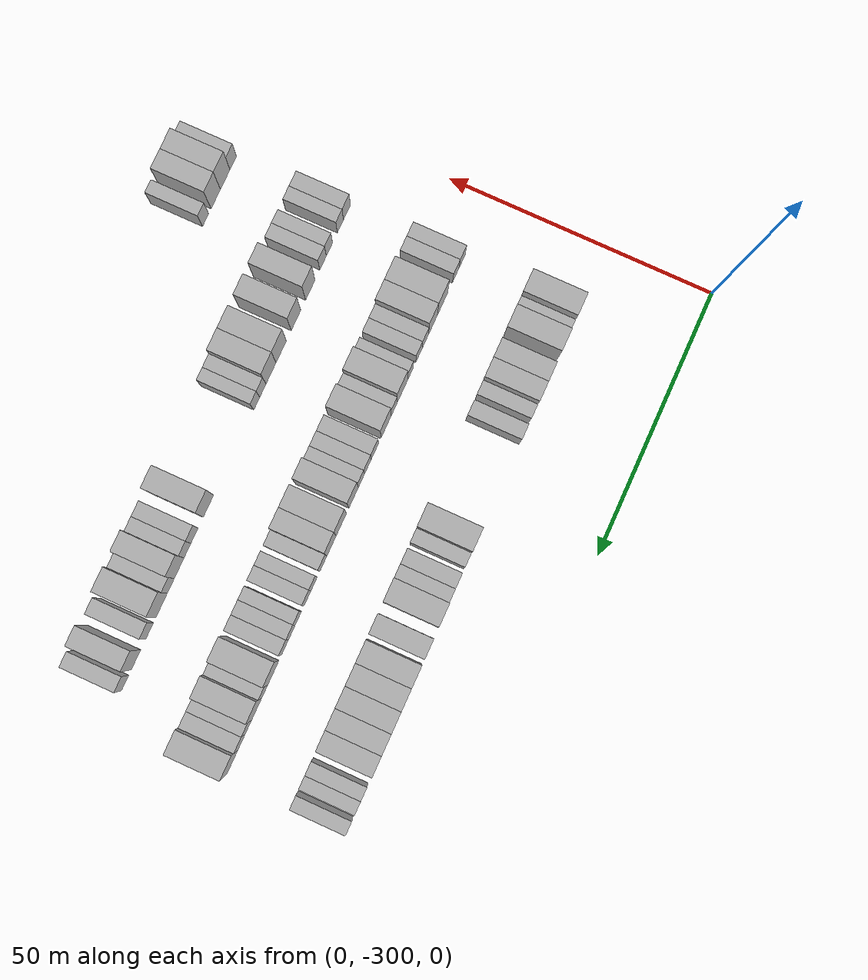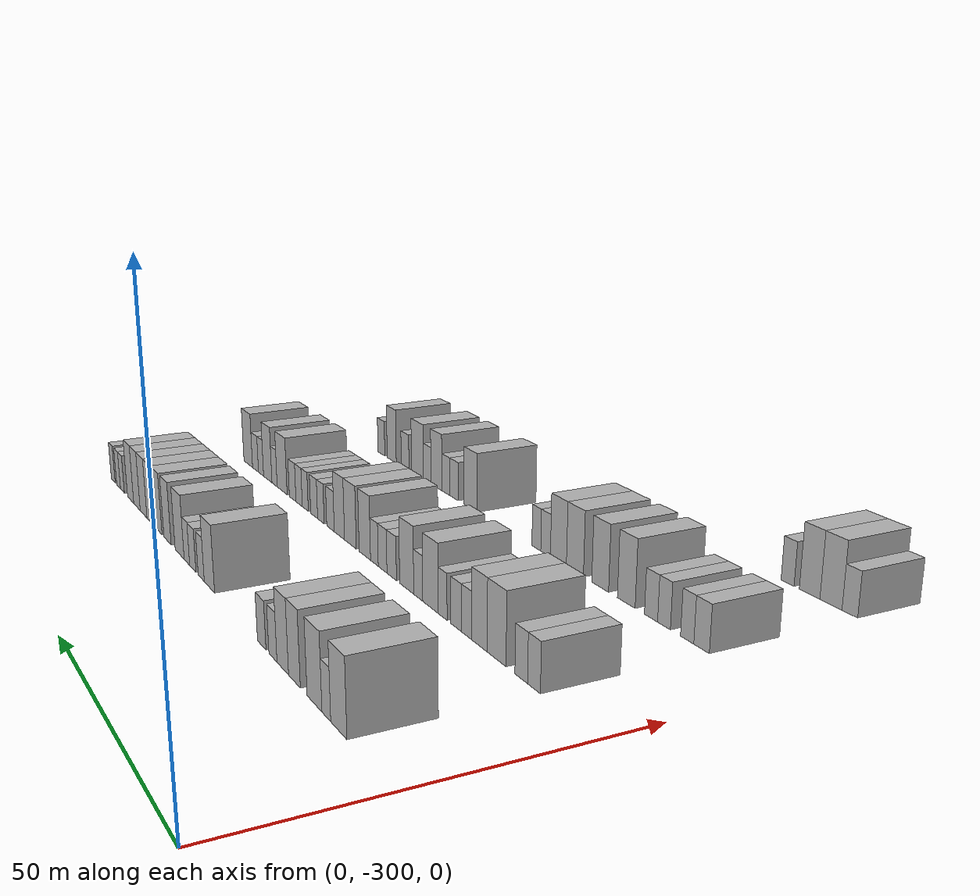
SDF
<sdf version="1.6">
 <world name="default">
  <model name="building_24">
   <static>1</static>
   <pose>25.0000 -286.5370 0 0.000000 0.000000 0.000000</pose>
   <link name="link">
    <pose>0 0 4.50 0 0 0</pose>
    <collision name="collision"><geometry><box><size>10.0000 4.2558 9.0000</size></box></geometry></collision>
    <visual name="visual">
     <cast_shadows>0</cast_shadows>
     <geometry><box><size>10.0000 4.2558 9.0000</size></box></geometry>
     <material>
      <script>
       <uri>model://HANNAS_wall/materials/scripts</uri>
       <uri>model://HANNAS_wall/materials/textures</uri>
       <name>vrc/HANNAS_wall</name>
      </script>
     </material>
    </visual>
   </link>
  </model>
  <model name="building_25">
   <static>1</static>
   <pose>25.0000 -283.2069 0 0.000000 0.000000 0.000000</pose>
   <link name="link">
    <pose>0 0 3.00 0 0 0</pose>
    <collision name="collision"><geometry><box><size>10.0000 2.4044 6.0000</size></box></geometry></collision>
    <visual name="visual">
     <cast_shadows>0</cast_shadows>
     <geometry><box><size>10.0000 2.4044 6.0000</size></box></geometry>
     <material>
      <script>
       <uri>model://HANNAS_wall/materials/scripts</uri>
       <uri>model://HANNAS_wall/materials/textures</uri>
       <name>vrc/HANNAS_wall</name>
      </script>
     </material>
    </visual>
   </link>
  </model>
  <model name="building_26">
   <static>1</static>
   <pose>25.0000 -279.8843 0 0.000000 0.000000 0.000000</pose>
   <link name="link">
    <pose>0 0 4.50 0 0 0</pose>
    <collision name="collision"><geometry><box><size>10.0000 4.2408 9.0000</size></box></geometry></collision>
    <visual name="visual">
     <cast_shadows>0</cast_shadows>
     <geometry><box><size>10.0000 4.2408 9.0000</size></box></geometry>
     <material>
      <script>
       <uri>model://HANNAS_wall/materials/scripts</uri>
       <uri>model://HANNAS_wall/materials/textures</uri>
       <name>vrc/HANNAS_wall</name>
      </script>
     </material>
    </visual>
   </link>
  </model>
  <model name="building_27">
   <static>1</static>
   <pose>25.0000 -273.9616 0 0.000000 0.000000 0.000000</pose>
   <link name="link">
    <pose>0 0 4.50 0 0 0</pose>
    <collision name="collision"><geometry><box><size>10.0000 3.6046 9.0000</size></box></geometry></collision>
    <visual name="visual">
     <cast_shadows>0</cast_shadows>
     <geometry><box><size>10.0000 3.6046 9.0000</size></box></geometry>
     <material>
      <script>
       <uri>model://HANNAS_wall/materials/scripts</uri>
       <uri>model://HANNAS_wall/materials/textures</uri>
       <name>vrc/HANNAS_wall</name>
      </script>
     </material>
    </visual>
   </link>
  </model>
  <model name="building_28">
   <static>1</static>
   <pose>25.0000 -270.3155 0 0.000000 0.000000 0.000000</pose>
   <link name="link">
    <pose>0 0 4.50 0 0 0</pose>
    <collision name="collision"><geometry><box><size>10.0000 3.6878 9.0000</size></box></geometry></collision>
    <visual name="visual">
     <cast_shadows>0</cast_shadows>
     <geometry><box><size>10.0000 3.6878 9.0000</size></box></geometry>
     <material>
      <script>
       <uri>model://HANNAS_wall/materials/scripts</uri>
       <uri>model://HANNAS_wall/materials/textures</uri>
       <name>vrc/HANNAS_wall</name>
      </script>
     </material>
    </visual>
   </link>
  </model>
  <model name="building_29">
   <static>1</static>
   <pose>25.0000 -267.1357 0 0.000000 0.000000 0.000000</pose>
   <link name="link">
    <pose>0 0 3.00 0 0 0</pose>
    <collision name="collision"><geometry><box><size>10.0000 2.6718 6.0000</size></box></geometry></collision>
    <visual name="visual">
     <cast_shadows>0</cast_shadows>
     <geometry><box><size>10.0000 2.6718 6.0000</size></box></geometry>
     <material>
      <script>
       <uri>model://HANNAS_wall/materials/scripts</uri>
       <uri>model://HANNAS_wall/materials/textures</uri>
       <name>vrc/HANNAS_wall</name>
      </script>
     </material>
    </visual>
   </link>
  </model>
  <model name="building_30">
   <static>1</static>
   <pose>25.0000 -263.3466 0 0.000000 0.000000 0.000000</pose>
   <link name="link">
    <pose>0 0 3.00 0 0 0</pose>
    <collision name="collision"><geometry><box><size>10.0000 2.9063 6.0000</size></box></geometry></collision>
    <visual name="visual">
     <cast_shadows>0</cast_shadows>
     <geometry><box><size>10.0000 2.9063 6.0000</size></box></geometry>
     <material>
      <script>
       <uri>model://HANNAS_wall/materials/scripts</uri>
       <uri>model://HANNAS_wall/materials/textures</uri>
       <name>vrc/HANNAS_wall</name>
      </script>
     </material>
    </visual>
   </link>
  </model>
  <model name="building_31">
   <static>1</static>
   <pose>25.0000 -243.3205 0 0.000000 0.000000 0.000000</pose>
   <link name="link">
    <pose>0 0 4.50 0 0 0</pose>
    <collision name="collision"><geometry><box><size>10.0000 4.3820 9.0000</size></box></geometry></collision>
    <visual name="visual">
     <cast_shadows>0</cast_shadows>
     <geometry><box><size>10.0000 4.3820 9.0000</size></box></geometry>
     <material>
      <script>
       <uri>model://HANNAS_wall/materials/scripts</uri>
       <uri>model://HANNAS_wall/materials/textures</uri>
       <name>vrc/HANNAS_wall</name>
      </script>
     </material>
    </visual>
   </link>
  </model>
  <model name="building_32">
   <static>1</static>
   <pose>25.0000 -239.7959 0 0.000000 0.000000 0.000000</pose>
   <link name="link">
    <pose>0 0 3.00 0 0 0</pose>
    <collision name="collision"><geometry><box><size>10.0000 2.6673 6.0000</size></box></geometry></collision>
    <visual name="visual">
     <cast_shadows>0</cast_shadows>
     <geometry><box><size>10.0000 2.6673 6.0000</size></box></geometry>
     <material>
      <script>
       <uri>model://HANNAS_wall/materials/scripts</uri>
       <uri>model://HANNAS_wall/materials/textures</uri>
       <name>vrc/HANNAS_wall</name>
      </script>
     </material>
    </visual>
   </link>
  </model>
  <model name="building_33">
   <static>1</static>
   <pose>25.0000 -236.0294 0 0.000000 0.000000 0.000000</pose>
   <link name="link">
    <pose>0 0 3.00 0 0 0</pose>
    <collision name="collision"><geometry><box><size>10.0000 2.8657 6.0000</size></box></geometry></collision>
    <visual name="visual">
     <cast_shadows>0</cast_shadows>
     <geometry><box><size>10.0000 2.8657 6.0000</size></box></geometry>
     <material>
      <script>
       <uri>model://HANNAS_wall/materials/scripts</uri>
       <uri>model://HANNAS_wall/materials/textures</uri>
       <name>vrc/HANNAS_wall</name>
      </script>
     </material>
    </visual>
   </link>
  </model>
  <model name="building_34">
   <static>1</static>
   <pose>25.0000 -233.3056 0 0.000000 0.000000 0.000000</pose>
   <link name="link">
    <pose>0 0 3.00 0 0 0</pose>
    <collision name="collision"><geometry><box><size>10.0000 2.5817 6.0000</size></box></geometry></collision>
    <visual name="visual">
     <cast_shadows>0</cast_shadows>
     <geometry><box><size>10.0000 2.5817 6.0000</size></box></geometry>
     <material>
      <script>
       <uri>model://HANNAS_wall/materials/scripts</uri>
       <uri>model://HANNAS_wall/materials/textures</uri>
       <name>vrc/HANNAS_wall</name>
      </script>
     </material>
    </visual>
   </link>
  </model>
  <model name="building_35">
   <static>1</static>
   <pose>25.0000 -229.8420 0 0.000000 0.000000 0.000000</pose>
   <link name="link">
    <pose>0 0 4.50 0 0 0</pose>
    <collision name="collision"><geometry><box><size>10.0000 4.3456 9.0000</size></box></geometry></collision>
    <visual name="visual">
     <cast_shadows>0</cast_shadows>
     <geometry><box><size>10.0000 4.3456 9.0000</size></box></geometry>
     <material>
      <script>
       <uri>model://HANNAS_wall/materials/scripts</uri>
       <uri>model://HANNAS_wall/materials/textures</uri>
       <name>vrc/HANNAS_wall</name>
      </script>
     </material>
    </visual>
   </link>
  </model>
  <model name="building_36">
   <static>1</static>
   <pose>25.0000 -223.8364 0 0.000000 0.000000 0.000000</pose>
   <link name="link">
    <pose>0 0 4.50 0 0 0</pose>
    <collision name="collision"><geometry><box><size>10.0000 3.6656 9.0000</size></box></geometry></collision>
    <visual name="visual">
     <cast_shadows>0</cast_shadows>
     <geometry><box><size>10.0000 3.6656 9.0000</size></box></geometry>
     <material>
      <script>
       <uri>model://HANNAS_wall/materials/scripts</uri>
       <uri>model://HANNAS_wall/materials/textures</uri>
       <name>vrc/HANNAS_wall</name>
      </script>
     </material>
    </visual>
   </link>
  </model>
  <model name="building_37">
   <static>1</static>
   <pose>25.0000 -218.9363 0 0.000000 0.000000 0.000000</pose>
   <link name="link">
    <pose>0 0 4.50 0 0 0</pose>
    <collision name="collision"><geometry><box><size>10.0000 4.1347 9.0000</size></box></geometry></collision>
    <visual name="visual">
     <cast_shadows>0</cast_shadows>
     <geometry><box><size>10.0000 4.1347 9.0000</size></box></geometry>
     <material>
      <script>
       <uri>model://HANNAS_wall/materials/scripts</uri>
       <uri>model://HANNAS_wall/materials/textures</uri>
       <name>vrc/HANNAS_wall</name>
      </script>
     </material>
    </visual>
   </link>
  </model>
  <model name="building_38">
   <static>1</static>
   <pose>25.0000 -214.8536 0 0.000000 0.000000 0.000000</pose>
   <link name="link">
    <pose>0 0 4.50 0 0 0</pose>
    <collision name="collision"><geometry><box><size>10.0000 4.0306 9.0000</size></box></geometry></collision>
    <visual name="visual">
     <cast_shadows>0</cast_shadows>
     <geometry><box><size>10.0000 4.0306 9.0000</size></box></geometry>
     <material>
      <script>
       <uri>model://HANNAS_wall/materials/scripts</uri>
       <uri>model://HANNAS_wall/materials/textures</uri>
       <name>vrc/HANNAS_wall</name>
      </script>
     </material>
    </visual>
   </link>
  </model>
  <model name="building_39">
   <static>1</static>
   <pose>25.0000 -210.9039 0 0.000000 0.000000 0.000000</pose>
   <link name="link">
    <pose>0 0 4.50 0 0 0</pose>
    <collision name="collision"><geometry><box><size>10.0000 3.8688 9.0000</size></box></geometry></collision>
    <visual name="visual">
     <cast_shadows>0</cast_shadows>
     <geometry><box><size>10.0000 3.8688 9.0000</size></box></geometry>
     <material>
      <script>
       <uri>model://HANNAS_wall/materials/scripts</uri>
       <uri>model://HANNAS_wall/materials/textures</uri>
       <name>vrc/HANNAS_wall</name>
      </script>
     </material>
    </visual>
   </link>
  </model>
  <model name="building_40">
   <static>1</static>
   <pose>25.0000 -207.0612 0 0.000000 0.000000 0.000000</pose>
   <link name="link">
    <pose>0 0 4.50 0 0 0</pose>
    <collision name="collision"><geometry><box><size>10.0000 3.8166 9.0000</size></box></geometry></collision>
    <visual name="visual">
     <cast_shadows>0</cast_shadows>
     <geometry><box><size>10.0000 3.8166 9.0000</size></box></geometry>
     <material>
      <script>
       <uri>model://HANNAS_wall/materials/scripts</uri>
       <uri>model://HANNAS_wall/materials/textures</uri>
       <name>vrc/HANNAS_wall</name>
      </script>
     </material>
    </visual>
   </link>
  </model>
  <model name="building_41">
   <static>1</static>
   <pose>25.0000 -203.2755 0 0.000000 0.000000 0.000000</pose>
   <link name="link">
    <pose>0 0 4.50 0 0 0</pose>
    <collision name="collision"><geometry><box><size>10.0000 3.7547 9.0000</size></box></geometry></collision>
    <visual name="visual">
     <cast_shadows>0</cast_shadows>
     <geometry><box><size>10.0000 3.7547 9.0000</size></box></geometry>
     <material>
      <script>
       <uri>model://HANNAS_wall/materials/scripts</uri>
       <uri>model://HANNAS_wall/materials/textures</uri>
       <name>vrc/HANNAS_wall</name>
      </script>
     </material>
    </visual>
   </link>
  </model>
  <model name="building_42">
   <static>1</static>
   <pose>25.0000 -198.1532 0 0.000000 0.000000 0.000000</pose>
   <link name="link">
    <pose>0 0 3.00 0 0 0</pose>
    <collision name="collision"><geometry><box><size>10.0000 2.4900 6.0000</size></box></geometry></collision>
    <visual name="visual">
     <cast_shadows>0</cast_shadows>
     <geometry><box><size>10.0000 2.4900 6.0000</size></box></geometry>
     <material>
      <script>
       <uri>model://HANNAS_wall/materials/scripts</uri>
       <uri>model://HANNAS_wall/materials/textures</uri>
       <name>vrc/HANNAS_wall</name>
      </script>
     </material>
    </visual>
   </link>
  </model>
  <model name="building_43">
   <static>1</static>
   <pose>25.0000 -195.6854 0 0.000000 0.000000 0.000000</pose>
   <link name="link">
    <pose>0 0 3.00 0 0 0</pose>
    <collision name="collision"><geometry><box><size>10.0000 2.4456 6.0000</size></box></geometry></collision>
    <visual name="visual">
     <cast_shadows>0</cast_shadows>
     <geometry><box><size>10.0000 2.4456 6.0000</size></box></geometry>
     <material>
      <script>
       <uri>model://HANNAS_wall/materials/scripts</uri>
       <uri>model://HANNAS_wall/materials/textures</uri>
       <name>vrc/HANNAS_wall</name>
      </script>
     </material>
    </visual>
   </link>
  </model>
  <model name="building_44">
   <static>1</static>
   <pose>25.0000 -192.1995 0 0.000000 0.000000 0.000000</pose>
   <link name="link">
    <pose>0 0 3.00 0 0 0</pose>
    <collision name="collision"><geometry><box><size>10.0000 2.5263 6.0000</size></box></geometry></collision>
    <visual name="visual">
     <cast_shadows>0</cast_shadows>
     <geometry><box><size>10.0000 2.5263 6.0000</size></box></geometry>
     <material>
      <script>
       <uri>model://HANNAS_wall/materials/scripts</uri>
       <uri>model://HANNAS_wall/materials/textures</uri>
       <name>vrc/HANNAS_wall</name>
      </script>
     </material>
    </visual>
   </link>
  </model>
  <model name="building_210">
   <static>1</static>
   <pose>47.0000 -287.2032 0 0.000000 0.000000 0.000000</pose>
   <link name="link">
    <pose>0 0 3.00 0 0 0</pose>
    <collision name="collision"><geometry><box><size>10.0000 2.7211 6.0000</size></box></geometry></collision>
    <visual name="visual">
     <cast_shadows>0</cast_shadows>
     <geometry><box><size>10.0000 2.7211 6.0000</size></box></geometry>
     <material>
      <script>
       <uri>model://HANNAS_wall/materials/scripts</uri>
       <uri>model://HANNAS_wall/materials/textures</uri>
       <name>vrc/HANNAS_wall</name>
      </script>
     </material>
    </visual>
   </link>
  </model>
  <model name="building_211">
   <static>1</static>
   <pose>47.0000 -284.4563 0 0.000000 0.000000 0.000000</pose>
   <link name="link">
    <pose>0 0 3.00 0 0 0</pose>
    <collision name="collision"><geometry><box><size>10.0000 2.7726 6.0000</size></box></geometry></collision>
    <visual name="visual">
     <cast_shadows>0</cast_shadows>
     <geometry><box><size>10.0000 2.7726 6.0000</size></box></geometry>
     <material>
      <script>
       <uri>model://HANNAS_wall/materials/scripts</uri>
       <uri>model://HANNAS_wall/materials/textures</uri>
       <name>vrc/HANNAS_wall</name>
      </script>
     </material>
    </visual>
   </link>
  </model>
  <model name="building_212">
   <static>1</static>
   <pose>47.0000 -278.8762 0 0.000000 0.000000 0.000000</pose>
   <link name="link">
    <pose>0 0 4.50 0 0 0</pose>
    <collision name="collision"><geometry><box><size>10.0000 4.3877 9.0000</size></box></geometry></collision>
    <visual name="visual">
     <cast_shadows>0</cast_shadows>
     <geometry><box><size>10.0000 4.3877 9.0000</size></box></geometry>
     <material>
      <script>
       <uri>model://HANNAS_wall/materials/scripts</uri>
       <uri>model://HANNAS_wall/materials/textures</uri>
       <name>vrc/HANNAS_wall</name>
      </script>
     </material>
    </visual>
   </link>
  </model>
  <model name="building_213">
   <static>1</static>
   <pose>47.0000 -274.7833 0 0.000000 0.000000 0.000000</pose>
   <link name="link">
    <pose>0 0 4.50 0 0 0</pose>
    <collision name="collision"><geometry><box><size>10.0000 3.7979 9.0000</size></box></geometry></collision>
    <visual name="visual">
     <cast_shadows>0</cast_shadows>
     <geometry><box><size>10.0000 3.7979 9.0000</size></box></geometry>
     <material>
      <script>
       <uri>model://HANNAS_wall/materials/scripts</uri>
       <uri>model://HANNAS_wall/materials/textures</uri>
       <name>vrc/HANNAS_wall</name>
      </script>
     </material>
    </visual>
   </link>
  </model>
  <model name="building_214">
   <static>1</static>
   <pose>47.0000 -271.5562 0 0.000000 0.000000 0.000000</pose>
   <link name="link">
    <pose>0 0 3.00 0 0 0</pose>
    <collision name="collision"><geometry><box><size>10.0000 2.6563 6.0000</size></box></geometry></collision>
    <visual name="visual">
     <cast_shadows>0</cast_shadows>
     <geometry><box><size>10.0000 2.6563 6.0000</size></box></geometry>
     <material>
      <script>
       <uri>model://HANNAS_wall/materials/scripts</uri>
       <uri>model://HANNAS_wall/materials/textures</uri>
       <name>vrc/HANNAS_wall</name>
      </script>
     </material>
    </visual>
   </link>
  </model>
  <model name="building_215">
   <static>1</static>
   <pose>47.0000 -268.8867 0 0.000000 0.000000 0.000000</pose>
   <link name="link">
    <pose>0 0 3.00 0 0 0</pose>
    <collision name="collision"><geometry><box><size>10.0000 2.6827 6.0000</size></box></geometry></collision>
    <visual name="visual">
     <cast_shadows>0</cast_shadows>
     <geometry><box><size>10.0000 2.6827 6.0000</size></box></geometry>
     <material>
      <script>
       <uri>model://HANNAS_wall/materials/scripts</uri>
       <uri>model://HANNAS_wall/materials/textures</uri>
       <name>vrc/HANNAS_wall</name>
      </script>
     </material>
    </visual>
   </link>
  </model>
  <model name="building_216">
   <static>1</static>
   <pose>47.0000 -265.3339 0 0.000000 0.000000 0.000000</pose>
   <link name="link">
    <pose>0 0 3.00 0 0 0</pose>
    <collision name="collision"><geometry><box><size>10.0000 2.4229 6.0000</size></box></geometry></collision>
    <visual name="visual">
     <cast_shadows>0</cast_shadows>
     <geometry><box><size>10.0000 2.4229 6.0000</size></box></geometry>
     <material>
      <script>
       <uri>model://HANNAS_wall/materials/scripts</uri>
       <uri>model://HANNAS_wall/materials/textures</uri>
       <name>vrc/HANNAS_wall</name>
      </script>
     </material>
    </visual>
   </link>
  </model>
  <model name="building_217">
   <static>1</static>
   <pose>47.0000 -261.9814 0 0.000000 0.000000 0.000000</pose>
   <link name="link">
    <pose>0 0 4.50 0 0 0</pose>
    <collision name="collision"><geometry><box><size>10.0000 4.2821 9.0000</size></box></geometry></collision>
    <visual name="visual">
     <cast_shadows>0</cast_shadows>
     <geometry><box><size>10.0000 4.2821 9.0000</size></box></geometry>
     <material>
      <script>
       <uri>model://HANNAS_wall/materials/scripts</uri>
       <uri>model://HANNAS_wall/materials/textures</uri>
       <name>vrc/HANNAS_wall</name>
      </script>
     </material>
    </visual>
   </link>
  </model>
  <model name="building_218">
   <static>1</static>
   <pose>47.0000 -258.5374 0 0.000000 0.000000 0.000000</pose>
   <link name="link">
    <pose>0 0 3.00 0 0 0</pose>
    <collision name="collision"><geometry><box><size>10.0000 2.6060 6.0000</size></box></geometry></collision>
    <visual name="visual">
     <cast_shadows>0</cast_shadows>
     <geometry><box><size>10.0000 2.6060 6.0000</size></box></geometry>
     <material>
      <script>
       <uri>model://HANNAS_wall/materials/scripts</uri>
       <uri>model://HANNAS_wall/materials/textures</uri>
       <name>vrc/HANNAS_wall</name>
      </script>
     </material>
    </visual>
   </link>
  </model>
  <model name="building_219">
   <static>1</static>
   <pose>47.0000 -255.1278 0 0.000000 0.000000 0.000000</pose>
   <link name="link">
    <pose>0 0 4.50 0 0 0</pose>
    <collision name="collision"><geometry><box><size>10.0000 4.2130 9.0000</size></box></geometry></collision>
    <visual name="visual">
     <cast_shadows>0</cast_shadows>
     <geometry><box><size>10.0000 4.2130 9.0000</size></box></geometry>
     <material>
      <script>
       <uri>model://HANNAS_wall/materials/scripts</uri>
       <uri>model://HANNAS_wall/materials/textures</uri>
       <name>vrc/HANNAS_wall</name>
      </script>
     </material>
    </visual>
   </link>
  </model>
  <model name="building_220">
   <static>1</static>
   <pose>47.0000 -250.5356 0 0.000000 0.000000 0.000000</pose>
   <link name="link">
    <pose>0 0 3.00 0 0 0</pose>
    <collision name="collision"><geometry><box><size>10.0000 2.9715 6.0000</size></box></geometry></collision>
    <visual name="visual">
     <cast_shadows>0</cast_shadows>
     <geometry><box><size>10.0000 2.9715 6.0000</size></box></geometry>
     <material>
      <script>
       <uri>model://HANNAS_wall/materials/scripts</uri>
       <uri>model://HANNAS_wall/materials/textures</uri>
       <name>vrc/HANNAS_wall</name>
      </script>
     </material>
    </visual>
   </link>
  </model>
  <model name="building_221">
   <static>1</static>
   <pose>47.0000 -247.6510 0 0.000000 0.000000 0.000000</pose>
   <link name="link">
    <pose>0 0 3.00 0 0 0</pose>
    <collision name="collision"><geometry><box><size>10.0000 2.7976 6.0000</size></box></geometry></collision>
    <visual name="visual">
     <cast_shadows>0</cast_shadows>
     <geometry><box><size>10.0000 2.7976 6.0000</size></box></geometry>
     <material>
      <script>
       <uri>model://HANNAS_wall/materials/scripts</uri>
       <uri>model://HANNAS_wall/materials/textures</uri>
       <name>vrc/HANNAS_wall</name>
      </script>
     </material>
    </visual>
   </link>
  </model>
  <model name="building_222">
   <static>1</static>
   <pose>47.0000 -244.9726 0 0.000000 0.000000 0.000000</pose>
   <link name="link">
    <pose>0 0 3.00 0 0 0</pose>
    <collision name="collision"><geometry><box><size>10.0000 2.5590 6.0000</size></box></geometry></collision>
    <visual name="visual">
     <cast_shadows>0</cast_shadows>
     <geometry><box><size>10.0000 2.5590 6.0000</size></box></geometry>
     <material>
      <script>
       <uri>model://HANNAS_wall/materials/scripts</uri>
       <uri>model://HANNAS_wall/materials/textures</uri>
       <name>vrc/HANNAS_wall</name>
      </script>
     </material>
    </visual>
   </link>
  </model>
  <model name="building_223">
   <static>1</static>
   <pose>47.0000 -241.7598 0 0.000000 0.000000 0.000000</pose>
   <link name="link">
    <pose>0 0 4.50 0 0 0</pose>
    <collision name="collision"><geometry><box><size>10.0000 3.8667 9.0000</size></box></geometry></collision>
    <visual name="visual">
     <cast_shadows>0</cast_shadows>
     <geometry><box><size>10.0000 3.8667 9.0000</size></box></geometry>
     <material>
      <script>
       <uri>model://HANNAS_wall/materials/scripts</uri>
       <uri>model://HANNAS_wall/materials/textures</uri>
       <name>vrc/HANNAS_wall</name>
      </script>
     </material>
    </visual>
   </link>
  </model>
  <model name="building_224">
   <static>1</static>
   <pose>47.0000 -236.7335 0 0.000000 0.000000 0.000000</pose>
   <link name="link">
    <pose>0 0 4.50 0 0 0</pose>
    <collision name="collision"><geometry><box><size>10.0000 4.1858 9.0000</size></box></geometry></collision>
    <visual name="visual">
     <cast_shadows>0</cast_shadows>
     <geometry><box><size>10.0000 4.1858 9.0000</size></box></geometry>
     <material>
      <script>
       <uri>model://HANNAS_wall/materials/scripts</uri>
       <uri>model://HANNAS_wall/materials/textures</uri>
       <name>vrc/HANNAS_wall</name>
      </script>
     </material>
    </visual>
   </link>
  </model>
  <model name="building_225">
   <static>1</static>
   <pose>47.0000 -232.7395 0 0.000000 0.000000 0.000000</pose>
   <link name="link">
    <pose>0 0 4.50 0 0 0</pose>
    <collision name="collision"><geometry><box><size>10.0000 3.8023 9.0000</size></box></geometry></collision>
    <visual name="visual">
     <cast_shadows>0</cast_shadows>
     <geometry><box><size>10.0000 3.8023 9.0000</size></box></geometry>
     <material>
      <script>
       <uri>model://HANNAS_wall/materials/scripts</uri>
       <uri>model://HANNAS_wall/materials/textures</uri>
       <name>vrc/HANNAS_wall</name>
      </script>
     </material>
    </visual>
   </link>
  </model>
  <model name="building_226">
   <static>1</static>
   <pose>47.0000 -229.4067 0 0.000000 0.000000 0.000000</pose>
   <link name="link">
    <pose>0 0 3.00 0 0 0</pose>
    <collision name="collision"><geometry><box><size>10.0000 2.8632 6.0000</size></box></geometry></collision>
    <visual name="visual">
     <cast_shadows>0</cast_shadows>
     <geometry><box><size>10.0000 2.8632 6.0000</size></box></geometry>
     <material>
      <script>
       <uri>model://HANNAS_wall/materials/scripts</uri>
       <uri>model://HANNAS_wall/materials/textures</uri>
       <name>vrc/HANNAS_wall</name>
      </script>
     </material>
    </visual>
   </link>
  </model>
  <model name="building_227">
   <static>1</static>
   <pose>47.0000 -225.6837 0 0.000000 0.000000 0.000000</pose>
   <link name="link">
    <pose>0 0 3.00 0 0 0</pose>
    <collision name="collision"><geometry><box><size>10.0000 2.5828 6.0000</size></box></geometry></collision>
    <visual name="visual">
     <cast_shadows>0</cast_shadows>
     <geometry><box><size>10.0000 2.5828 6.0000</size></box></geometry>
     <material>
      <script>
       <uri>model://HANNAS_wall/materials/scripts</uri>
       <uri>model://HANNAS_wall/materials/textures</uri>
       <name>vrc/HANNAS_wall</name>
      </script>
     </material>
    </visual>
   </link>
  </model>
  <model name="building_228">
   <static>1</static>
   <pose>47.0000 -223.0009 0 0.000000 0.000000 0.000000</pose>
   <link name="link">
    <pose>0 0 3.00 0 0 0</pose>
    <collision name="collision"><geometry><box><size>10.0000 2.7828 6.0000</size></box></geometry></collision>
    <visual name="visual">
     <cast_shadows>0</cast_shadows>
     <geometry><box><size>10.0000 2.7828 6.0000</size></box></geometry>
     <material>
      <script>
       <uri>model://HANNAS_wall/materials/scripts</uri>
       <uri>model://HANNAS_wall/materials/textures</uri>
       <name>vrc/HANNAS_wall</name>
      </script>
     </material>
    </visual>
   </link>
  </model>
  <model name="building_229">
   <static>1</static>
   <pose>47.0000 -219.3722 0 0.000000 0.000000 0.000000</pose>
   <link name="link">
    <pose>0 0 3.00 0 0 0</pose>
    <collision name="collision"><geometry><box><size>10.0000 2.4747 6.0000</size></box></geometry></collision>
    <visual name="visual">
     <cast_shadows>0</cast_shadows>
     <geometry><box><size>10.0000 2.4747 6.0000</size></box></geometry>
     <material>
      <script>
       <uri>model://HANNAS_wall/materials/scripts</uri>
       <uri>model://HANNAS_wall/materials/textures</uri>
       <name>vrc/HANNAS_wall</name>
      </script>
     </material>
    </visual>
   </link>
  </model>
  <model name="building_230">
   <static>1</static>
   <pose>47.0000 -216.7842 0 0.000000 0.000000 0.000000</pose>
   <link name="link">
    <pose>0 0 3.00 0 0 0</pose>
    <collision name="collision"><geometry><box><size>10.0000 2.7013 6.0000</size></box></geometry></collision>
    <visual name="visual">
     <cast_shadows>0</cast_shadows>
     <geometry><box><size>10.0000 2.7013 6.0000</size></box></geometry>
     <material>
      <script>
       <uri>model://HANNAS_wall/materials/scripts</uri>
       <uri>model://HANNAS_wall/materials/textures</uri>
       <name>vrc/HANNAS_wall</name>
      </script>
     </material>
    </visual>
   </link>
  </model>
  <model name="building_231">
   <static>1</static>
   <pose>47.0000 -214.0095 0 0.000000 0.000000 0.000000</pose>
   <link name="link">
    <pose>0 0 3.00 0 0 0</pose>
    <collision name="collision"><geometry><box><size>10.0000 2.8481 6.0000</size></box></geometry></collision>
    <visual name="visual">
     <cast_shadows>0</cast_shadows>
     <geometry><box><size>10.0000 2.8481 6.0000</size></box></geometry>
     <material>
      <script>
       <uri>model://HANNAS_wall/materials/scripts</uri>
       <uri>model://HANNAS_wall/materials/textures</uri>
       <name>vrc/HANNAS_wall</name>
      </script>
     </material>
    </visual>
   </link>
  </model>
  <model name="building_232">
   <static>1</static>
   <pose>47.0000 -209.3414 0 0.000000 0.000000 0.000000</pose>
   <link name="link">
    <pose>0 0 4.50 0 0 0</pose>
    <collision name="collision"><geometry><box><size>10.0000 4.4881 9.0000</size></box></geometry></collision>
    <visual name="visual">
     <cast_shadows>0</cast_shadows>
     <geometry><box><size>10.0000 4.4881 9.0000</size></box></geometry>
     <material>
      <script>
       <uri>model://HANNAS_wall/materials/scripts</uri>
       <uri>model://HANNAS_wall/materials/textures</uri>
       <name>vrc/HANNAS_wall</name>
      </script>
     </material>
    </visual>
   </link>
  </model>
  <model name="building_233">
   <static>1</static>
   <pose>47.0000 -205.8927 0 0.000000 0.000000 0.000000</pose>
   <link name="link">
    <pose>0 0 3.00 0 0 0</pose>
    <collision name="collision"><geometry><box><size>10.0000 2.4092 6.0000</size></box></geometry></collision>
    <visual name="visual">
     <cast_shadows>0</cast_shadows>
     <geometry><box><size>10.0000 2.4092 6.0000</size></box></geometry>
     <material>
      <script>
       <uri>model://HANNAS_wall/materials/scripts</uri>
       <uri>model://HANNAS_wall/materials/textures</uri>
       <name>vrc/HANNAS_wall</name>
      </script>
     </material>
    </visual>
   </link>
  </model>
  <model name="building_234">
   <static>1</static>
   <pose>47.0000 -202.6949 0 0.000000 0.000000 0.000000</pose>
   <link name="link">
    <pose>0 0 4.50 0 0 0</pose>
    <collision name="collision"><geometry><box><size>10.0000 3.9864 9.0000</size></box></geometry></collision>
    <visual name="visual">
     <cast_shadows>0</cast_shadows>
     <geometry><box><size>10.0000 3.9864 9.0000</size></box></geometry>
     <material>
      <script>
       <uri>model://HANNAS_wall/materials/scripts</uri>
       <uri>model://HANNAS_wall/materials/textures</uri>
       <name>vrc/HANNAS_wall</name>
      </script>
     </material>
    </visual>
   </link>
  </model>
  <model name="building_235">
   <static>1</static>
   <pose>47.0000 -199.4555 0 0.000000 0.000000 0.000000</pose>
   <link name="link">
    <pose>0 0 3.00 0 0 0</pose>
    <collision name="collision"><geometry><box><size>10.0000 2.4923 6.0000</size></box></geometry></collision>
    <visual name="visual">
     <cast_shadows>0</cast_shadows>
     <geometry><box><size>10.0000 2.4923 6.0000</size></box></geometry>
     <material>
      <script>
       <uri>model://HANNAS_wall/materials/scripts</uri>
       <uri>model://HANNAS_wall/materials/textures</uri>
       <name>vrc/HANNAS_wall</name>
      </script>
     </material>
    </visual>
   </link>
  </model>
  <model name="building_236">
   <static>1</static>
   <pose>47.0000 -196.7406 0 0.000000 0.000000 0.000000</pose>
   <link name="link">
    <pose>0 0 3.00 0 0 0</pose>
    <collision name="collision"><geometry><box><size>10.0000 2.9376 6.0000</size></box></geometry></collision>
    <visual name="visual">
     <cast_shadows>0</cast_shadows>
     <geometry><box><size>10.0000 2.9376 6.0000</size></box></geometry>
     <material>
      <script>
       <uri>model://HANNAS_wall/materials/scripts</uri>
       <uri>model://HANNAS_wall/materials/textures</uri>
       <name>vrc/HANNAS_wall</name>
      </script>
     </material>
    </visual>
   </link>
  </model>
  <model name="building_237">
   <static>1</static>
   <pose>47.0000 -193.0768 0 0.000000 0.000000 0.000000</pose>
   <link name="link">
    <pose>0 0 4.50 0 0 0</pose>
    <collision name="collision"><geometry><box><size>10.0000 4.3901 9.0000</size></box></geometry></collision>
    <visual name="visual">
     <cast_shadows>0</cast_shadows>
     <geometry><box><size>10.0000 4.3901 9.0000</size></box></geometry>
     <material>
      <script>
       <uri>model://HANNAS_wall/materials/scripts</uri>
       <uri>model://HANNAS_wall/materials/textures</uri>
       <name>vrc/HANNAS_wall</name>
      </script>
     </material>
    </visual>
   </link>
  </model>
  <model name="building_404">
   <static>1</static>
   <pose>69.0000 -287.0007 0 0.000000 0.000000 0.000000</pose>
   <link name="link">
    <pose>0 0 3.00 0 0 0</pose>
    <collision name="collision"><geometry><box><size>10.0000 2.9169 6.0000</size></box></geometry></collision>
    <visual name="visual">
     <cast_shadows>0</cast_shadows>
     <geometry><box><size>10.0000 2.9169 6.0000</size></box></geometry>
     <material>
      <script>
       <uri>model://HANNAS_wall/materials/scripts</uri>
       <uri>model://HANNAS_wall/materials/textures</uri>
       <name>vrc/HANNAS_wall</name>
      </script>
     </material>
    </visual>
   </link>
  </model>
  <model name="building_405">
   <static>1</static>
   <pose>69.0000 -284.2606 0 0.000000 0.000000 0.000000</pose>
   <link name="link">
    <pose>0 0 3.00 0 0 0</pose>
    <collision name="collision"><geometry><box><size>10.0000 2.5632 6.0000</size></box></geometry></collision>
    <visual name="visual">
     <cast_shadows>0</cast_shadows>
     <geometry><box><size>10.0000 2.5632 6.0000</size></box></geometry>
     <material>
      <script>
       <uri>model://HANNAS_wall/materials/scripts</uri>
       <uri>model://HANNAS_wall/materials/textures</uri>
       <name>vrc/HANNAS_wall</name>
      </script>
     </material>
    </visual>
   </link>
  </model>
  <model name="building_406">
   <static>1</static>
   <pose>69.0000 -279.6822 0 0.000000 0.000000 0.000000</pose>
   <link name="link">
    <pose>0 0 3.00 0 0 0</pose>
    <collision name="collision"><geometry><box><size>10.0000 2.5938 6.0000</size></box></geometry></collision>
    <visual name="visual">
     <cast_shadows>0</cast_shadows>
     <geometry><box><size>10.0000 2.5938 6.0000</size></box></geometry>
     <material>
      <script>
       <uri>model://HANNAS_wall/materials/scripts</uri>
       <uri>model://HANNAS_wall/materials/textures</uri>
       <name>vrc/HANNAS_wall</name>
      </script>
     </material>
    </visual>
   </link>
  </model>
  <model name="building_407">
   <static>1</static>
   <pose>69.0000 -277.0204 0 0.000000 0.000000 0.000000</pose>
   <link name="link">
    <pose>0 0 3.00 0 0 0</pose>
    <collision name="collision"><geometry><box><size>10.0000 2.7297 6.0000</size></box></geometry></collision>
    <visual name="visual">
     <cast_shadows>0</cast_shadows>
     <geometry><box><size>10.0000 2.7297 6.0000</size></box></geometry>
     <material>
      <script>
       <uri>model://HANNAS_wall/materials/scripts</uri>
       <uri>model://HANNAS_wall/materials/textures</uri>
       <name>vrc/HANNAS_wall</name>
      </script>
     </material>
    </visual>
   </link>
  </model>
  <model name="building_408">
   <static>1</static>
   <pose>69.0000 -271.7046 0 0.000000 0.000000 0.000000</pose>
   <link name="link">
    <pose>0 0 4.50 0 0 0</pose>
    <collision name="collision"><geometry><box><size>10.0000 3.9019 9.0000</size></box></geometry></collision>
    <visual name="visual">
     <cast_shadows>0</cast_shadows>
     <geometry><box><size>10.0000 3.9019 9.0000</size></box></geometry>
     <material>
      <script>
       <uri>model://HANNAS_wall/materials/scripts</uri>
       <uri>model://HANNAS_wall/materials/textures</uri>
       <name>vrc/HANNAS_wall</name>
      </script>
     </material>
    </visual>
   </link>
  </model>
  <model name="building_409">
   <static>1</static>
   <pose>69.0000 -265.7890 0 0.000000 0.000000 0.000000</pose>
   <link name="link">
    <pose>0 0 4.50 0 0 0</pose>
    <collision name="collision"><geometry><box><size>10.0000 3.9293 9.0000</size></box></geometry></collision>
    <visual name="visual">
     <cast_shadows>0</cast_shadows>
     <geometry><box><size>10.0000 3.9293 9.0000</size></box></geometry>
     <material>
      <script>
       <uri>model://HANNAS_wall/materials/scripts</uri>
       <uri>model://HANNAS_wall/materials/textures</uri>
       <name>vrc/HANNAS_wall</name>
      </script>
     </material>
    </visual>
   </link>
  </model>
  <model name="building_410">
   <static>1</static>
   <pose>69.0000 -259.7115 0 0.000000 0.000000 0.000000</pose>
   <link name="link">
    <pose>0 0 4.50 0 0 0</pose>
    <collision name="collision"><geometry><box><size>10.0000 4.2257 9.0000</size></box></geometry></collision>
    <visual name="visual">
     <cast_shadows>0</cast_shadows>
     <geometry><box><size>10.0000 4.2257 9.0000</size></box></geometry>
     <material>
      <script>
       <uri>model://HANNAS_wall/materials/scripts</uri>
       <uri>model://HANNAS_wall/materials/textures</uri>
       <name>vrc/HANNAS_wall</name>
      </script>
     </material>
    </visual>
   </link>
  </model>
  <model name="building_411">
   <static>1</static>
   <pose>69.0000 -255.5405 0 0.000000 0.000000 0.000000</pose>
   <link name="link">
    <pose>0 0 4.50 0 0 0</pose>
    <collision name="collision"><geometry><box><size>10.0000 4.1163 9.0000</size></box></geometry></collision>
    <visual name="visual">
     <cast_shadows>0</cast_shadows>
     <geometry><box><size>10.0000 4.1163 9.0000</size></box></geometry>
     <material>
      <script>
       <uri>model://HANNAS_wall/materials/scripts</uri>
       <uri>model://HANNAS_wall/materials/textures</uri>
       <name>vrc/HANNAS_wall</name>
      </script>
     </material>
    </visual>
   </link>
  </model>
  <model name="building_412">
   <static>1</static>
   <pose>69.0000 -252.2043 0 0.000000 0.000000 0.000000</pose>
   <link name="link">
    <pose>0 0 3.00 0 0 0</pose>
    <collision name="collision"><geometry><box><size>10.0000 2.5562 6.0000</size></box></geometry></collision>
    <visual name="visual">
     <cast_shadows>0</cast_shadows>
     <geometry><box><size>10.0000 2.5562 6.0000</size></box></geometry>
     <material>
      <script>
       <uri>model://HANNAS_wall/materials/scripts</uri>
       <uri>model://HANNAS_wall/materials/textures</uri>
       <name>vrc/HANNAS_wall</name>
      </script>
     </material>
    </visual>
   </link>
  </model>
  <model name="building_413">
   <static>1</static>
   <pose>69.0000 -249.7206 0 0.000000 0.000000 0.000000</pose>
   <link name="link">
    <pose>0 0 3.00 0 0 0</pose>
    <collision name="collision"><geometry><box><size>10.0000 2.4111 6.0000</size></box></geometry></collision>
    <visual name="visual">
     <cast_shadows>0</cast_shadows>
     <geometry><box><size>10.0000 2.4111 6.0000</size></box></geometry>
     <material>
      <script>
       <uri>model://HANNAS_wall/materials/scripts</uri>
       <uri>model://HANNAS_wall/materials/textures</uri>
       <name>vrc/HANNAS_wall</name>
      </script>
     </material>
    </visual>
   </link>
  </model>
  <model name="building_414">
   <static>1</static>
   <pose>69.0000 -230.2471 0 0.000000 0.000000 0.000000</pose>
   <link name="link">
    <pose>0 0 4.50 0 0 0</pose>
    <collision name="collision"><geometry><box><size>10.0000 4.1786 9.0000</size></box></geometry></collision>
    <visual name="visual">
     <cast_shadows>0</cast_shadows>
     <geometry><box><size>10.0000 4.1786 9.0000</size></box></geometry>
     <material>
      <script>
       <uri>model://HANNAS_wall/materials/scripts</uri>
       <uri>model://HANNAS_wall/materials/textures</uri>
       <name>vrc/HANNAS_wall</name>
      </script>
     </material>
    </visual>
   </link>
  </model>
  <model name="building_415">
   <static>1</static>
   <pose>69.0000 -224.7182 0 0.000000 0.000000 0.000000</pose>
   <link name="link">
    <pose>0 0 3.00 0 0 0</pose>
    <collision name="collision"><geometry><box><size>10.0000 2.8792 6.0000</size></box></geometry></collision>
    <visual name="visual">
     <cast_shadows>0</cast_shadows>
     <geometry><box><size>10.0000 2.8792 6.0000</size></box></geometry>
     <material>
      <script>
       <uri>model://HANNAS_wall/materials/scripts</uri>
       <uri>model://HANNAS_wall/materials/textures</uri>
       <name>vrc/HANNAS_wall</name>
      </script>
     </material>
    </visual>
   </link>
  </model>
  <model name="building_416">
   <static>1</static>
   <pose>69.0000 -221.9303 0 0.000000 0.000000 0.000000</pose>
   <link name="link">
    <pose>0 0 3.00 0 0 0</pose>
    <collision name="collision"><geometry><box><size>10.0000 2.6965 6.0000</size></box></geometry></collision>
    <visual name="visual">
     <cast_shadows>0</cast_shadows>
     <geometry><box><size>10.0000 2.6965 6.0000</size></box></geometry>
     <material>
      <script>
       <uri>model://HANNAS_wall/materials/scripts</uri>
       <uri>model://HANNAS_wall/materials/textures</uri>
       <name>vrc/HANNAS_wall</name>
      </script>
     </material>
    </visual>
   </link>
  </model>
  <model name="building_417">
   <static>1</static>
   <pose>69.0000 -218.6546 0 0.000000 0.000000 0.000000</pose>
   <link name="link">
    <pose>0 0 4.50 0 0 0</pose>
    <collision name="collision"><geometry><box><size>10.0000 3.8548 9.0000</size></box></geometry></collision>
    <visual name="visual">
     <cast_shadows>0</cast_shadows>
     <geometry><box><size>10.0000 3.8548 9.0000</size></box></geometry>
     <material>
      <script>
       <uri>model://HANNAS_wall/materials/scripts</uri>
       <uri>model://HANNAS_wall/materials/textures</uri>
       <name>vrc/HANNAS_wall</name>
      </script>
     </material>
    </visual>
   </link>
  </model>
  <model name="building_418">
   <static>1</static>
   <pose>69.0000 -215.3597 0 0.000000 0.000000 0.000000</pose>
   <link name="link">
    <pose>0 0 3.00 0 0 0</pose>
    <collision name="collision"><geometry><box><size>10.0000 2.7350 6.0000</size></box></geometry></collision>
    <visual name="visual">
     <cast_shadows>0</cast_shadows>
     <geometry><box><size>10.0000 2.7350 6.0000</size></box></geometry>
     <material>
      <script>
       <uri>model://HANNAS_wall/materials/scripts</uri>
       <uri>model://HANNAS_wall/materials/textures</uri>
       <name>vrc/HANNAS_wall</name>
      </script>
     </material>
    </visual>
   </link>
  </model>
  <model name="building_419">
   <static>1</static>
   <pose>69.0000 -211.7740 0 0.000000 0.000000 0.000000</pose>
   <link name="link">
    <pose>0 0 4.50 0 0 0</pose>
    <collision name="collision"><geometry><box><size>10.0000 4.4363 9.0000</size></box></geometry></collision>
    <visual name="visual">
     <cast_shadows>0</cast_shadows>
     <geometry><box><size>10.0000 4.4363 9.0000</size></box></geometry>
     <material>
      <script>
       <uri>model://HANNAS_wall/materials/scripts</uri>
       <uri>model://HANNAS_wall/materials/textures</uri>
       <name>vrc/HANNAS_wall</name>
      </script>
     </material>
    </visual>
   </link>
  </model>
  <model name="building_420">
   <static>1</static>
   <pose>69.0000 -207.0685 0 0.000000 0.000000 0.000000</pose>
   <link name="link">
    <pose>0 0 3.00 0 0 0</pose>
    <collision name="collision"><geometry><box><size>10.0000 2.9748 6.0000</size></box></geometry></collision>
    <visual name="visual">
     <cast_shadows>0</cast_shadows>
     <geometry><box><size>10.0000 2.9748 6.0000</size></box></geometry>
     <material>
      <script>
       <uri>model://HANNAS_wall/materials/scripts</uri>
       <uri>model://HANNAS_wall/materials/textures</uri>
       <name>vrc/HANNAS_wall</name>
      </script>
     </material>
    </visual>
   </link>
  </model>
  <model name="building_421">
   <static>1</static>
   <pose>69.0000 -201.7510 0 0.000000 0.000000 0.000000</pose>
   <link name="link">
    <pose>0 0 4.50 0 0 0</pose>
    <collision name="collision"><geometry><box><size>10.0000 3.6602 9.0000</size></box></geometry></collision>
    <visual name="visual">
     <cast_shadows>0</cast_shadows>
     <geometry><box><size>10.0000 3.6602 9.0000</size></box></geometry>
     <material>
      <script>
       <uri>model://HANNAS_wall/materials/scripts</uri>
       <uri>model://HANNAS_wall/materials/textures</uri>
       <name>vrc/HANNAS_wall</name>
      </script>
     </material>
    </visual>
   </link>
  </model>
  <model name="building_422">
   <static>1</static>
   <pose>69.0000 -197.4986 0 0.000000 0.000000 0.000000</pose>
   <link name="link">
    <pose>0 0 3.00 0 0 0</pose>
    <collision name="collision"><geometry><box><size>10.0000 2.8445 6.0000</size></box></geometry></collision>
    <visual name="visual">
     <cast_shadows>0</cast_shadows>
     <geometry><box><size>10.0000 2.8445 6.0000</size></box></geometry>
     <material>
      <script>
       <uri>model://HANNAS_wall/materials/scripts</uri>
       <uri>model://HANNAS_wall/materials/textures</uri>
       <name>vrc/HANNAS_wall</name>
      </script>
     </material>
    </visual>
   </link>
  </model>
  <model name="building_589">
   <static>1</static>
   <pose>91.0000 -286.9233 0 0.000000 0.000000 0.000000</pose>
   <link name="link">
    <pose>0 0 3.00 0 0 0</pose>
    <collision name="collision"><geometry><box><size>10.0000 2.7194 6.0000</size></box></geometry></collision>
    <visual name="visual">
     <cast_shadows>0</cast_shadows>
     <geometry><box><size>10.0000 2.7194 6.0000</size></box></geometry>
     <material>
      <script>
       <uri>model://HANNAS_wall/materials/scripts</uri>
       <uri>model://HANNAS_wall/materials/textures</uri>
       <name>vrc/HANNAS_wall</name>
      </script>
     </material>
    </visual>
   </link>
  </model>
  <model name="building_590">
   <static>1</static>
   <pose>91.0000 -283.5907 0 0.000000 0.000000 0.000000</pose>
   <link name="link">
    <pose>0 0 4.50 0 0 0</pose>
    <collision name="collision"><geometry><box><size>10.0000 3.9458 9.0000</size></box></geometry></collision>
    <visual name="visual">
     <cast_shadows>0</cast_shadows>
     <geometry><box><size>10.0000 3.9458 9.0000</size></box></geometry>
     <material>
      <script>
       <uri>model://HANNAS_wall/materials/scripts</uri>
       <uri>model://HANNAS_wall/materials/textures</uri>
       <name>vrc/HANNAS_wall</name>
      </script>
     </material>
    </visual>
   </link>
  </model>
  <model name="building_591">
   <static>1</static>
   <pose>91.0000 -279.7095 0 0.000000 0.000000 0.000000</pose>
   <link name="link">
    <pose>0 0 4.50 0 0 0</pose>
    <collision name="collision"><geometry><box><size>10.0000 3.8167 9.0000</size></box></geometry></collision>
    <visual name="visual">
     <cast_shadows>0</cast_shadows>
     <geometry><box><size>10.0000 3.8167 9.0000</size></box></geometry>
     <material>
      <script>
       <uri>model://HANNAS_wall/materials/scripts</uri>
       <uri>model://HANNAS_wall/materials/textures</uri>
       <name>vrc/HANNAS_wall</name>
      </script>
     </material>
    </visual>
   </link>
  </model>
  <model name="building_592">
   <static>1</static>
   <pose>91.0000 -275.5443 0 0.000000 0.000000 0.000000</pose>
   <link name="link">
    <pose>0 0 3.00 0 0 0</pose>
    <collision name="collision"><geometry><box><size>10.0000 2.5136 6.0000</size></box></geometry></collision>
    <visual name="visual">
     <cast_shadows>0</cast_shadows>
     <geometry><box><size>10.0000 2.5136 6.0000</size></box></geometry>
     <material>
      <script>
       <uri>model://HANNAS_wall/materials/scripts</uri>
       <uri>model://HANNAS_wall/materials/textures</uri>
       <name>vrc/HANNAS_wall</name>
      </script>
     </material>
    </visual>
   </link>
  </model>
 </world>
</sdf>
